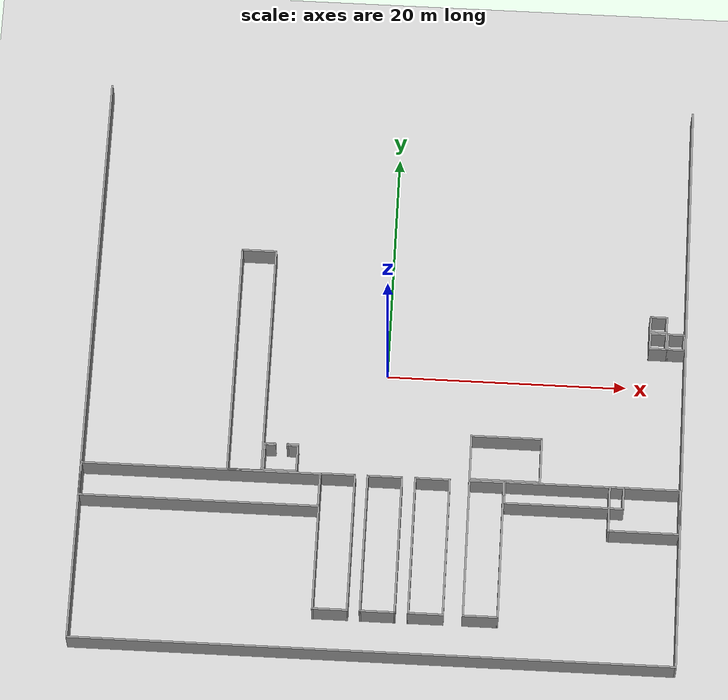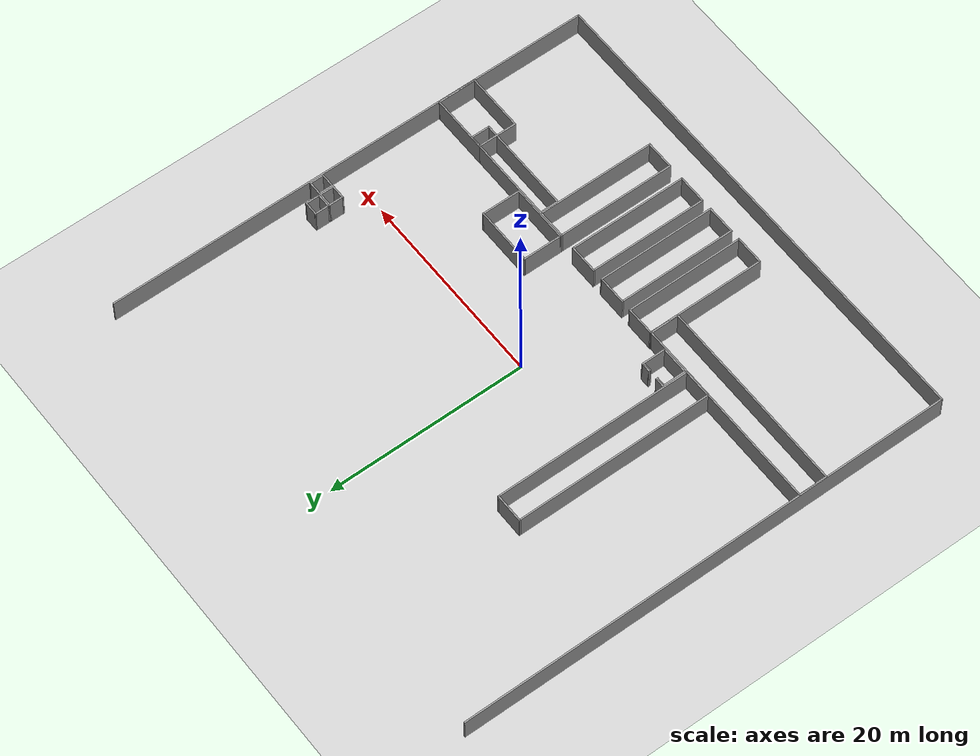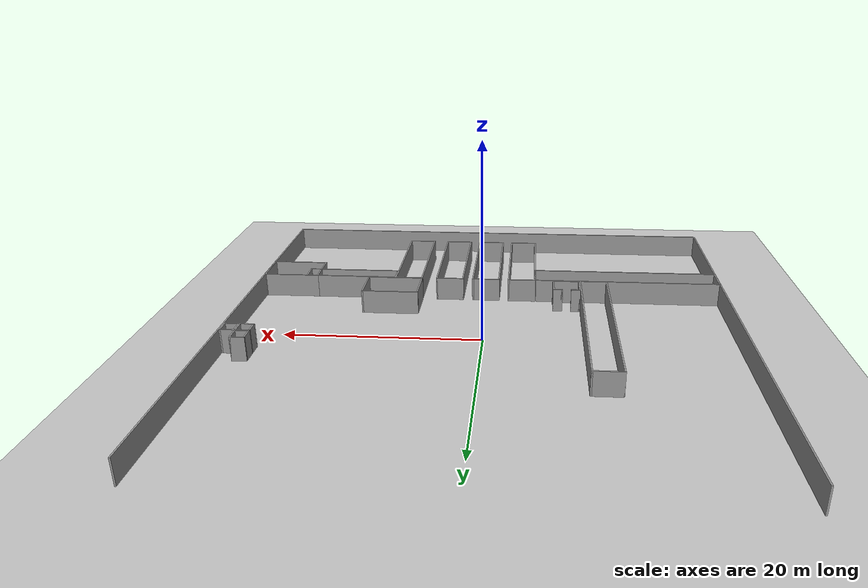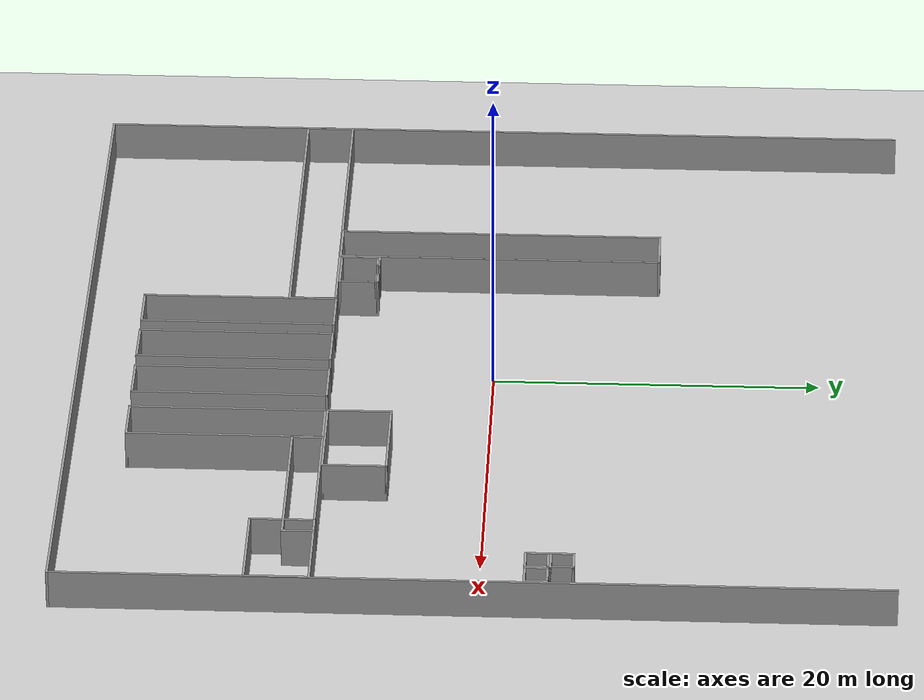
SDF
<sdf version="1.6">
 <world name="default">
  <model name="ground_plane">
   <static>1</static>
   <link name="link">
    <collision name="collision">
     <geometry><plane><normal>0 0 1</normal><size>100 100</size></plane></geometry>
     <surface>
      <contact><collide_bitmask>65535</collide_bitmask></contact>
      <friction><ode><mu>100</mu><mu2>50</mu2></ode></friction>
     </surface>
    </collision>
    <visual name="visual">
     <cast_shadows>0</cast_shadows>
     <geometry><plane><normal>0 0 1</normal><size>100 100</size></plane></geometry>
     <material>
      <script><uri>file://media/materials/scripts/gazebo.material</uri><name>Gazebo/Grey</name></script>
     </material>
    </visual>
   </link>
  </model>
  <model name="wall_50m_v">
   <pose>-25.0143 -0.23534 0 0 -0 0</pose>
   <link name="Wall_2">
    <collision name="Wall_2_Collision">
     <geometry><box><size>50 0.15 2.5</size></box></geometry>
     <pose>0 0 1.25 0 -0 0</pose>
    </collision>
    <visual name="Wall_2_Visual">
     <pose>0 0 1.25 0 -0 0</pose>
     <geometry><box><size>50 0.15 2.5</size></box></geometry>
     <material>
      <script><uri>file://media/materials/scripts/gazebo.material</uri><name>Gazebo/Grey</name></script>
      <ambient>1 1 1 1</ambient>
     </material>
     <meta><layer>0</layer></meta>
    </visual>
    <pose>-0 -1e-06 0 0 -0 -1.5708</pose>
   </link>
   <static>1</static>
  </model>
  <model name="wall_50m_0">
   <pose>-0.071935 -25.2621 0 0 -0 0</pose>
   <link name="Wall_0">
    <collision name="Wall_0_Collision">
     <geometry><box><size>50 0.15 2.5</size></box></geometry>
     <pose>0 0 1.25 0 -0 0</pose>
    </collision>
    <visual name="Wall_0_Visual">
     <pose>0 0 1.25 0 -0 0</pose>
     <geometry><box><size>50 0.15 2.5</size></box></geometry>
     <material>
      <script><uri>file://media/materials/scripts/gazebo.material</uri><name>Gazebo/Grey</name></script>
      <ambient>1 1 1 1</ambient>
     </material>
     <meta><layer>0</layer></meta>
    </visual>
    <pose>-1e-06 0 0 0 -0 0</pose>
   </link>
   <static>1</static>
  </model>
  <model name="wall_50m_v_0">
   <pose>24.8495 -0.34033 0 0 -0 0</pose>
   <link name="Wall_2">
    <collision name="Wall_2_Collision">
     <geometry><box><size>50 0.15 2.5</size></box></geometry>
     <pose>0 0 1.25 0 -0 0</pose>
    </collision>
    <visual name="Wall_2_Visual">
     <pose>0 0 1.25 0 -0 0</pose>
     <geometry><box><size>50 0.15 2.5</size></box></geometry>
     <material>
      <script><uri>file://media/materials/scripts/gazebo.material</uri><name>Gazebo/Grey</name></script>
      <ambient>1 1 1 1</ambient>
     </material>
     <meta><layer>0</layer></meta>
    </visual>
    <pose>-0 -1e-06 0 0 -0 -1.5708</pose>
   </link>
   <static>1</static>
  </model>
  <model name="base20x3">
   <pose>-11.4278 0.026202 0 0 -0 0</pose>
   <link name="Wall_21">
    <collision name="Wall_21_Collision">
     <geometry><box><size>20 0.15 2.5</size></box></geometry>
     <pose>0 0 1.25 0 -0 0</pose>
    </collision>
    <visual name="Wall_21_Visual">
     <pose>0 0 1.25 0 -0 0</pose>
     <geometry><box><size>20 0.15 2.5</size></box></geometry>
     <material>
      <script><uri>file://media/materials/scripts/gazebo.material</uri><name>Gazebo/Grey</name></script>
      <ambient>1 1 1 1</ambient>
     </material>
     <meta><layer>0</layer></meta>
    </visual>
    <pose>-1.425 -0 0 0 -0 -1.5708</pose>
   </link>
   <link name="Wall_22">
    <collision name="Wall_22_Collision">
     <geometry><box><size>3 0.15 2.5</size></box></geometry>
     <pose>0 0 1.25 0 -0 0</pose>
    </collision>
    <visual name="Wall_22_Visual">
     <pose>0 0 1.25 0 -0 0</pose>
     <geometry><box><size>3 0.15 2.5</size></box></geometry>
     <material>
      <script><uri>file://media/materials/scripts/gazebo.material</uri><name>Gazebo/Grey</name></script>
      <ambient>1 1 1 1</ambient>
     </material>
     <meta><layer>0</layer></meta>
    </visual>
    <pose>-0 -9.925 0 0 -0 0</pose>
   </link>
   <link name="Wall_23">
    <collision name="Wall_23_Collision">
     <geometry><box><size>20 0.15 2.5</size></box></geometry>
     <pose>0 0 1.25 0 -0 0</pose>
    </collision>
    <visual name="Wall_23_Visual">
     <pose>0 0 1.25 0 -0 0</pose>
     <geometry><box><size>20 0.15 2.5</size></box></geometry>
     <material>
      <script><uri>file://media/materials/scripts/gazebo.material</uri><name>Gazebo/Grey</name></script>
      <ambient>1 1 1 1</ambient>
     </material>
     <meta><layer>0</layer></meta>
    </visual>
    <pose>1.425 -0 0 0 -0 1.5708</pose>
   </link>
   <link name="Wall_24">
    <collision name="Wall_24_Collision">
     <geometry><box><size>3 0.15 2.5</size></box></geometry>
     <pose>0 0 1.25 0 -0 0</pose>
    </collision>
    <visual name="Wall_24_Visual">
     <pose>0 0 1.25 0 -0 0</pose>
     <geometry><box><size>3 0.15 2.5</size></box></geometry>
     <material>
      <script><uri>file://media/materials/scripts/gazebo.material</uri><name>Gazebo/Grey</name></script>
      <ambient>1 1 1 1</ambient>
     </material>
     <meta><layer>0</layer></meta>
    </visual>
    <pose>-0 9.925 0 0 -0 3.14159</pose>
   </link>
   <static>1</static>
  </model>
  <model name="base3x20">
   <pose>-15.0546 -11.3706 0 0 -0 0</pose>
   <link name="Wall_16">
    <collision name="Wall_16_Collision">
     <geometry><box><size>3 0.15 2.5</size></box></geometry>
     <pose>0 0 1.25 0 -0 0</pose>
    </collision>
    <visual name="Wall_16_Visual">
     <pose>0 0 1.25 0 -0 0</pose>
     <geometry><box><size>3 0.15 2.5</size></box></geometry>
     <material>
      <script><uri>file://media/materials/scripts/gazebo.material</uri><name>Gazebo/Grey</name></script>
      <ambient>1 1 1 1</ambient>
     </material>
     <meta><layer>0</layer></meta>
    </visual>
    <pose>-9.925 -0 0 0 -0 -1.5708</pose>
   </link>
   <link name="Wall_17">
    <collision name="Wall_17_Collision">
     <geometry><box><size>20 0.15 2.5</size></box></geometry>
     <pose>0 0 1.25 0 -0 0</pose>
    </collision>
    <visual name="Wall_17_Visual">
     <pose>0 0 1.25 0 -0 0</pose>
     <geometry><box><size>20 0.15 2.5</size></box></geometry>
     <material>
      <script><uri>file://media/materials/scripts/gazebo.material</uri><name>Gazebo/Grey</name></script>
      <ambient>1 1 1 1</ambient>
     </material>
     <meta><layer>0</layer></meta>
    </visual>
    <pose>-0 -1.425 0 0 -0 0</pose>
   </link>
   <link name="Wall_18">
    <collision name="Wall_18_Collision">
     <geometry><box><size>3 0.15 2.5</size></box></geometry>
     <pose>0 0 1.25 0 -0 0</pose>
    </collision>
    <visual name="Wall_18_Visual">
     <pose>0 0 1.25 0 -0 0</pose>
     <geometry><box><size>3 0.15 2.5</size></box></geometry>
     <material>
      <script><uri>file://media/materials/scripts/gazebo.material</uri><name>Gazebo/Grey</name></script>
      <ambient>1 1 1 1</ambient>
     </material>
     <meta><layer>0</layer></meta>
    </visual>
    <pose>9.925 -0 0 0 -0 1.5708</pose>
   </link>
   <link name="Wall_19">
    <collision name="Wall_19_Collision">
     <geometry><box><size>20 0.15 2.5</size></box></geometry>
     <pose>0 0 1.25 0 -0 0</pose>
    </collision>
    <visual name="Wall_19_Visual">
     <pose>0 0 1.25 0 -0 0</pose>
     <geometry><box><size>20 0.15 2.5</size></box></geometry>
     <material>
      <script><uri>file://media/materials/scripts/gazebo.material</uri><name>Gazebo/Grey</name></script>
      <ambient>1 1 1 1</ambient>
     </material>
     <meta><layer>0</layer></meta>
    </visual>
    <pose>-0 1.425 0 0 -0 3.14159</pose>
   </link>
   <static>1</static>
  </model>
  <model name="base12x3">
   <pose>-3.65533 -15.8322 0 0 -0 0</pose>
   <link name="Wall_6">
    <collision name="Wall_6_Collision">
     <geometry><box><size>12 0.15 2.5</size></box></geometry>
     <pose>0 0 1.25 0 -0 0</pose>
    </collision>
    <visual name="Wall_6_Visual">
     <pose>0 0 1.25 0 -0 0</pose>
     <geometry><box><size>12 0.15 2.5</size></box></geometry>
     <material>
      <script><uri>file://media/materials/scripts/gazebo.material</uri><name>Gazebo/Grey</name></script>
      <ambient>1 1 1 1</ambient>
     </material>
     <meta><layer>0</layer></meta>
    </visual>
    <pose>-1.425 0 0 0 -0 -1.5708</pose>
   </link>
   <link name="Wall_7">
    <collision name="Wall_7_Collision">
     <geometry><box><size>3 0.15 2.5</size></box></geometry>
     <pose>0 0 1.25 0 -0 0</pose>
    </collision>
    <visual name="Wall_7_Visual">
     <pose>0 0 1.25 0 -0 0</pose>
     <geometry><box><size>3 0.15 2.5</size></box></geometry>
     <material>
      <script><uri>file://media/materials/scripts/gazebo.material</uri><name>Gazebo/Grey</name></script>
      <ambient>1 1 1 1</ambient>
     </material>
     <meta><layer>0</layer></meta>
    </visual>
    <pose>0 -5.925 0 0 -0 0</pose>
   </link>
   <link name="Wall_8">
    <collision name="Wall_8_Collision">
     <geometry><box><size>12 0.15 2.5</size></box></geometry>
     <pose>0 0 1.25 0 -0 0</pose>
    </collision>
    <visual name="Wall_8_Visual">
     <pose>0 0 1.25 0 -0 0</pose>
     <geometry><box><size>12 0.15 2.5</size></box></geometry>
     <material>
      <script><uri>file://media/materials/scripts/gazebo.material</uri><name>Gazebo/Grey</name></script>
      <ambient>1 1 1 1</ambient>
     </material>
     <meta><layer>0</layer></meta>
    </visual>
    <pose>1.425 0 0 0 -0 1.5708</pose>
   </link>
   <link name="Wall_9">
    <collision name="Wall_9_Collision">
     <geometry><box><size>3 0.15 2.5</size></box></geometry>
     <pose>0 0 1.25 0 -0 0</pose>
    </collision>
    <visual name="Wall_9_Visual">
     <pose>0 0 1.25 0 -0 0</pose>
     <geometry><box><size>3 0.15 2.5</size></box></geometry>
     <material>
      <script><uri>file://media/materials/scripts/gazebo.material</uri><name>Gazebo/Grey</name></script>
      <ambient>1 1 1 1</ambient>
     </material>
     <meta><layer>0</layer></meta>
    </visual>
    <pose>0 5.925 0 0 -0 3.14159</pose>
   </link>
   <static>1</static>
  </model>
  <model name="base12x3_0">
   <pose>0.25568 -15.8332 0 0 -0 0</pose>
   <link name="Wall_6">
    <collision name="Wall_6_Collision">
     <geometry><box><size>12 0.15 2.5</size></box></geometry>
     <pose>0 0 1.25 0 -0 0</pose>
    </collision>
    <visual name="Wall_6_Visual">
     <pose>0 0 1.25 0 -0 0</pose>
     <geometry><box><size>12 0.15 2.5</size></box></geometry>
     <material>
      <script><uri>file://media/materials/scripts/gazebo.material</uri><name>Gazebo/Grey</name></script>
      <ambient>1 1 1 1</ambient>
     </material>
     <meta><layer>0</layer></meta>
    </visual>
    <pose>-1.425 0 0 0 -0 -1.5708</pose>
   </link>
   <link name="Wall_7">
    <collision name="Wall_7_Collision">
     <geometry><box><size>3 0.15 2.5</size></box></geometry>
     <pose>0 0 1.25 0 -0 0</pose>
    </collision>
    <visual name="Wall_7_Visual">
     <pose>0 0 1.25 0 -0 0</pose>
     <geometry><box><size>3 0.15 2.5</size></box></geometry>
     <material>
      <script><uri>file://media/materials/scripts/gazebo.material</uri><name>Gazebo/Grey</name></script>
      <ambient>1 1 1 1</ambient>
     </material>
     <meta><layer>0</layer></meta>
    </visual>
    <pose>0 -5.925 0 0 -0 0</pose>
   </link>
   <link name="Wall_8">
    <collision name="Wall_8_Collision">
     <geometry><box><size>12 0.15 2.5</size></box></geometry>
     <pose>0 0 1.25 0 -0 0</pose>
    </collision>
    <visual name="Wall_8_Visual">
     <pose>0 0 1.25 0 -0 0</pose>
     <geometry><box><size>12 0.15 2.5</size></box></geometry>
     <material>
      <script><uri>file://media/materials/scripts/gazebo.material</uri><name>Gazebo/Grey</name></script>
      <ambient>1 1 1 1</ambient>
     </material>
     <meta><layer>0</layer></meta>
    </visual>
    <pose>1.425 0 0 0 -0 1.5708</pose>
   </link>
   <link name="Wall_9">
    <collision name="Wall_9_Collision">
     <geometry><box><size>3 0.15 2.5</size></box></geometry>
     <pose>0 0 1.25 0 -0 0</pose>
    </collision>
    <visual name="Wall_9_Visual">
     <pose>0 0 1.25 0 -0 0</pose>
     <geometry><box><size>3 0.15 2.5</size></box></geometry>
     <material>
      <script><uri>file://media/materials/scripts/gazebo.material</uri><name>Gazebo/Grey</name></script>
      <ambient>1 1 1 1</ambient>
     </material>
     <meta><layer>0</layer></meta>
    </visual>
    <pose>0 5.925 0 0 -0 3.14159</pose>
   </link>
   <static>1</static>
  </model>
  <model name="base12x3_1">
   <pose>4.21694 -15.8234 0 0 -0 0</pose>
   <link name="Wall_6">
    <collision name="Wall_6_Collision">
     <geometry><box><size>12 0.15 2.5</size></box></geometry>
     <pose>0 0 1.25 0 -0 0</pose>
    </collision>
    <visual name="Wall_6_Visual">
     <pose>0 0 1.25 0 -0 0</pose>
     <geometry><box><size>12 0.15 2.5</size></box></geometry>
     <material>
      <script><uri>file://media/materials/scripts/gazebo.material</uri><name>Gazebo/Grey</name></script>
      <ambient>1 1 1 1</ambient>
     </material>
     <meta><layer>0</layer></meta>
    </visual>
    <pose>-1.425 0 0 0 -0 -1.5708</pose>
   </link>
   <link name="Wall_7">
    <collision name="Wall_7_Collision">
     <geometry><box><size>3 0.15 2.5</size></box></geometry>
     <pose>0 0 1.25 0 -0 0</pose>
    </collision>
    <visual name="Wall_7_Visual">
     <pose>0 0 1.25 0 -0 0</pose>
     <geometry><box><size>3 0.15 2.5</size></box></geometry>
     <material>
      <script><uri>file://media/materials/scripts/gazebo.material</uri><name>Gazebo/Grey</name></script>
      <ambient>1 1 1 1</ambient>
     </material>
     <meta><layer>0</layer></meta>
    </visual>
    <pose>0 -5.925 0 0 -0 0</pose>
   </link>
   <link name="Wall_8">
    <collision name="Wall_8_Collision">
     <geometry><box><size>12 0.15 2.5</size></box></geometry>
     <pose>0 0 1.25 0 -0 0</pose>
    </collision>
    <visual name="Wall_8_Visual">
     <pose>0 0 1.25 0 -0 0</pose>
     <geometry><box><size>12 0.15 2.5</size></box></geometry>
     <material>
      <script><uri>file://media/materials/scripts/gazebo.material</uri><name>Gazebo/Grey</name></script>
      <ambient>1 1 1 1</ambient>
     </material>
     <meta><layer>0</layer></meta>
    </visual>
    <pose>1.425 0 0 0 -0 1.5708</pose>
   </link>
   <link name="Wall_9">
    <collision name="Wall_9_Collision">
     <geometry><box><size>3 0.15 2.5</size></box></geometry>
     <pose>0 0 1.25 0 -0 0</pose>
    </collision>
    <visual name="Wall_9_Visual">
     <pose>0 0 1.25 0 -0 0</pose>
     <geometry><box><size>3 0.15 2.5</size></box></geometry>
     <material>
      <script><uri>file://media/materials/scripts/gazebo.material</uri><name>Gazebo/Grey</name></script>
      <ambient>1 1 1 1</ambient>
     </material>
     <meta><layer>0</layer></meta>
    </visual>
    <pose>0 5.925 0 0 -0 3.14159</pose>
   </link>
   <static>1</static>
  </model>
  <model name="base12x3_2">
   <pose>8.71498 -15.8148 0 0 -0 0</pose>
   <link name="Wall_6">
    <collision name="Wall_6_Collision">
     <geometry><box><size>12 0.15 2.5</size></box></geometry>
     <pose>0 0 1.25 0 -0 0</pose>
    </collision>
    <visual name="Wall_6_Visual">
     <pose>0 0 1.25 0 -0 0</pose>
     <geometry><box><size>12 0.15 2.5</size></box></geometry>
     <material>
      <script><uri>file://media/materials/scripts/gazebo.material</uri><name>Gazebo/Grey</name></script>
      <ambient>1 1 1 1</ambient>
     </material>
     <meta><layer>0</layer></meta>
    </visual>
    <pose>-1.425 0 0 0 -0 -1.5708</pose>
   </link>
   <link name="Wall_7">
    <collision name="Wall_7_Collision">
     <geometry><box><size>3 0.15 2.5</size></box></geometry>
     <pose>0 0 1.25 0 -0 0</pose>
    </collision>
    <visual name="Wall_7_Visual">
     <pose>0 0 1.25 0 -0 0</pose>
     <geometry><box><size>3 0.15 2.5</size></box></geometry>
     <material>
      <script><uri>file://media/materials/scripts/gazebo.material</uri><name>Gazebo/Grey</name></script>
      <ambient>1 1 1 1</ambient>
     </material>
     <meta><layer>0</layer></meta>
    </visual>
    <pose>0 -5.925 0 0 -0 0</pose>
   </link>
   <link name="Wall_8">
    <collision name="Wall_8_Collision">
     <geometry><box><size>12 0.15 2.5</size></box></geometry>
     <pose>0 0 1.25 0 -0 0</pose>
    </collision>
    <visual name="Wall_8_Visual">
     <pose>0 0 1.25 0 -0 0</pose>
     <geometry><box><size>12 0.15 2.5</size></box></geometry>
     <material>
      <script><uri>file://media/materials/scripts/gazebo.material</uri><name>Gazebo/Grey</name></script>
      <ambient>1 1 1 1</ambient>
     </material>
     <meta><layer>0</layer></meta>
    </visual>
    <pose>1.425 0 0 0 -0 1.5708</pose>
   </link>
   <link name="Wall_9">
    <collision name="Wall_9_Collision">
     <geometry><box><size>3 0.15 2.5</size></box></geometry>
     <pose>0 0 1.25 0 -0 0</pose>
    </collision>
    <visual name="Wall_9_Visual">
     <pose>0 0 1.25 0 -0 0</pose>
     <geometry><box><size>3 0.15 2.5</size></box></geometry>
     <material>
      <script><uri>file://media/materials/scripts/gazebo.material</uri><name>Gazebo/Grey</name></script>
      <ambient>1 1 1 1</ambient>
     </material>
     <meta><layer>0</layer></meta>
    </visual>
    <pose>0 5.925 0 0 -0 3.14159</pose>
   </link>
   <static>1</static>
  </model>
  <model name="base2x10">
   <pose>15.1626 -10.8018 0 0 -0 0</pose>
   <link name="Wall_10">
    <collision name="Wall_10_Collision">
     <geometry><box><size>2 0.15 2.5</size></box></geometry>
     <pose>0 0 1.25 0 -0 0</pose>
    </collision>
    <visual name="Wall_10_Visual">
     <pose>0 0 1.25 0 -0 0</pose>
     <geometry><box><size>2 0.15 2.5</size></box></geometry>
     <material>
      <script><uri>file://media/materials/scripts/gazebo.material</uri><name>Gazebo/Grey</name></script>
      <ambient>1 1 1 1</ambient>
     </material>
     <meta><layer>0</layer></meta>
    </visual>
    <pose>-4.925 0 0 0 -0 -1.5708</pose>
   </link>
   <link name="Wall_11">
    <collision name="Wall_11_Collision">
     <geometry><box><size>10 0.15 2.5</size></box></geometry>
     <pose>0 0 1.25 0 -0 0</pose>
    </collision>
    <visual name="Wall_11_Visual">
     <pose>0 0 1.25 0 -0 0</pose>
     <geometry><box><size>10 0.15 2.5</size></box></geometry>
     <material>
      <script><uri>file://media/materials/scripts/gazebo.material</uri><name>Gazebo/Grey</name></script>
      <ambient>1 1 1 1</ambient>
     </material>
     <meta><layer>0</layer></meta>
    </visual>
    <pose>0 -0.925 0 0 -0 0</pose>
   </link>
   <link name="Wall_12">
    <collision name="Wall_12_Collision">
     <geometry><box><size>2 0.15 2.5</size></box></geometry>
     <pose>0 0 1.25 0 -0 0</pose>
    </collision>
    <visual name="Wall_12_Visual">
     <pose>0 0 1.25 0 -0 0</pose>
     <geometry><box><size>2 0.15 2.5</size></box></geometry>
     <material>
      <script><uri>file://media/materials/scripts/gazebo.material</uri><name>Gazebo/Grey</name></script>
      <ambient>1 1 1 1</ambient>
     </material>
     <meta><layer>0</layer></meta>
    </visual>
    <pose>4.925 0 0 0 -0 1.5708</pose>
   </link>
   <link name="Wall_13">
    <collision name="Wall_13_Collision">
     <geometry><box><size>10 0.15 2.5</size></box></geometry>
     <pose>0 0 1.25 0 -0 0</pose>
    </collision>
    <visual name="Wall_13_Visual">
     <pose>0 0 1.25 0 -0 0</pose>
     <geometry><box><size>10 0.15 2.5</size></box></geometry>
     <material>
      <script><uri>file://media/materials/scripts/gazebo.material</uri><name>Gazebo/Grey</name></script>
      <ambient>1 1 1 1</ambient>
     </material>
     <meta><layer>0</layer></meta>
    </visual>
    <pose>0 0.925 0 0 -0 3.14159</pose>
   </link>
   <static>1</static>
  </model>
  <model name="base4x6">
   <pose>21.8624 -11.7949 0 0 -0 0</pose>
   <link name="Wall_23">
    <collision name="Wall_23_Collision">
     <geometry><box><size>4 0.15 2.5</size></box></geometry>
     <pose>0 0 1.25 0 -0 0</pose>
    </collision>
    <visual name="Wall_23_Visual">
     <pose>0 0 1.25 0 -0 0</pose>
     <geometry><box><size>4 0.15 2.5</size></box></geometry>
     <material>
      <script><uri>file://media/materials/scripts/gazebo.material</uri><name>Gazebo/Grey</name></script>
      <ambient>1 1 1 1</ambient>
     </material>
     <meta><layer>0</layer></meta>
    </visual>
    <pose>-2.925 0 0 0 -0 -1.5708</pose>
   </link>
   <link name="Wall_24">
    <collision name="Wall_24_Collision">
     <geometry><box><size>6 0.15 2.5</size></box></geometry>
     <pose>0 0 1.25 0 -0 0</pose>
    </collision>
    <visual name="Wall_24_Visual">
     <pose>0 0 1.25 0 -0 0</pose>
     <geometry><box><size>6 0.15 2.5</size></box></geometry>
     <material>
      <script><uri>file://media/materials/scripts/gazebo.material</uri><name>Gazebo/Grey</name></script>
      <ambient>1 1 1 1</ambient>
     </material>
     <meta><layer>0</layer></meta>
    </visual>
    <pose>-0 -1.925 0 0 -0 0</pose>
   </link>
   <link name="Wall_25">
    <collision name="Wall_25_Collision">
     <geometry><box><size>4 0.15 2.5</size></box></geometry>
     <pose>0 0 1.25 0 -0 0</pose>
    </collision>
    <visual name="Wall_25_Visual">
     <pose>0 0 1.25 0 -0 0</pose>
     <geometry><box><size>4 0.15 2.5</size></box></geometry>
     <material>
      <script><uri>file://media/materials/scripts/gazebo.material</uri><name>Gazebo/Grey</name></script>
      <ambient>1 1 1 1</ambient>
     </material>
     <meta><layer>0</layer></meta>
    </visual>
    <pose>2.925 0 0 0 -0 1.5708</pose>
   </link>
   <link name="Wall_26">
    <collision name="Wall_26_Collision">
     <geometry><box><size>6 0.15 2.5</size></box></geometry>
     <pose>0 0 1.25 0 -0 0</pose>
    </collision>
    <visual name="Wall_26_Visual">
     <pose>0 0 1.25 0 -0 0</pose>
     <geometry><box><size>6 0.15 2.5</size></box></geometry>
     <material>
      <script><uri>file://media/materials/scripts/gazebo.material</uri><name>Gazebo/Grey</name></script>
      <ambient>1 1 1 1</ambient>
     </material>
     <meta><layer>0</layer></meta>
    </visual>
    <pose>-0 1.925 0 0 -0 3.14159</pose>
   </link>
   <static>1</static>
  </model>
  <model name="base4x6_5">
   <pose>10.2051 -7.82544 0 0 -0 0</pose>
   <link name="Wall_23">
    <collision name="Wall_23_Collision">
     <geometry><box><size>4 0.15 2.5</size></box></geometry>
     <pose>0 0 1.25 0 -0 0</pose>
    </collision>
    <visual name="Wall_23_Visual">
     <pose>0 0 1.25 0 -0 0</pose>
     <geometry><box><size>4 0.15 2.5</size></box></geometry>
     <material>
      <script><uri>file://media/materials/scripts/gazebo.material</uri><name>Gazebo/Grey</name></script>
      <ambient>1 1 1 1</ambient>
     </material>
     <meta><layer>0</layer></meta>
    </visual>
    <pose>-2.925 0 0 0 -0 -1.5708</pose>
   </link>
   <link name="Wall_24">
    <collision name="Wall_24_Collision">
     <geometry><box><size>6 0.15 2.5</size></box></geometry>
     <pose>0 0 1.25 0 -0 0</pose>
    </collision>
    <visual name="Wall_24_Visual">
     <pose>0 0 1.25 0 -0 0</pose>
     <geometry><box><size>6 0.15 2.5</size></box></geometry>
     <material>
      <script><uri>file://media/materials/scripts/gazebo.material</uri><name>Gazebo/Grey</name></script>
      <ambient>1 1 1 1</ambient>
     </material>
     <meta><layer>0</layer></meta>
    </visual>
    <pose>-0 -1.925 0 0 -0 0</pose>
   </link>
   <link name="Wall_25">
    <collision name="Wall_25_Collision">
     <geometry><box><size>4 0.15 2.5</size></box></geometry>
     <pose>0 0 1.25 0 -0 0</pose>
    </collision>
    <visual name="Wall_25_Visual">
     <pose>0 0 1.25 0 -0 0</pose>
     <geometry><box><size>4 0.15 2.5</size></box></geometry>
     <material>
      <script><uri>file://media/materials/scripts/gazebo.material</uri><name>Gazebo/Grey</name></script>
      <ambient>1 1 1 1</ambient>
     </material>
     <meta><layer>0</layer></meta>
    </visual>
    <pose>2.925 0 0 0 -0 1.5708</pose>
   </link>
   <link name="Wall_26">
    <collision name="Wall_26_Collision">
     <geometry><box><size>6 0.15 2.5</size></box></geometry>
     <pose>0 0 1.25 0 -0 0</pose>
    </collision>
    <visual name="Wall_26_Visual">
     <pose>0 0 1.25 0 -0 0</pose>
     <geometry><box><size>6 0.15 2.5</size></box></geometry>
     <material>
      <script><uri>file://media/materials/scripts/gazebo.material</uri><name>Gazebo/Grey</name></script>
      <ambient>1 1 1 1</ambient>
     </material>
     <meta><layer>0</layer></meta>
    </visual>
    <pose>-0 1.925 0 0 -0 3.14159</pose>
   </link>
   <static>1</static>
  </model>
  <model name="elevator_90cm">
   <pose>-8.48705 -8.62797 0 0 -0 0</pose>
   <link name="Wall_22">
    <collision name="Wall_22_Collision">
     <geometry><box><size>1 0.15 2.5</size></box></geometry>
     <pose>0 0 1.25 0 -0 0</pose>
    </collision>
    <visual name="Wall_22_Visual">
     <pose>0 0 1.25 0 -0 0</pose>
     <geometry><box><size>1 0.15 2.5</size></box></geometry>
     <material>
      <script><uri>file://media/materials/scripts/gazebo.material</uri><name>Gazebo/Grey</name></script>
      <ambient>1 1 1 1</ambient>
     </material>
     <meta><layer>0</layer></meta>
    </visual>
    <pose>-0.95 1.175 0 0 -0 3.14159</pose>
   </link>
   <link name="Wall_23">
    <collision name="Wall_23_Collision">
     <geometry><box><size>2.5 0.15 2.5</size></box></geometry>
     <pose>0 0 1.25 0 -0 0</pose>
    </collision>
    <visual name="Wall_23_Visual">
     <pose>0 0 1.25 0 -0 0</pose>
     <geometry><box><size>2.5 0.15 2.5</size></box></geometry>
     <material>
      <script><uri>file://media/materials/scripts/gazebo.material</uri><name>Gazebo/Grey</name></script>
      <ambient>1 1 1 1</ambient>
     </material>
     <meta><layer>0</layer></meta>
    </visual>
    <pose>-1.375 0 0 0 -0 -1.5708</pose>
   </link>
   <link name="Wall_25">
    <collision name="Wall_25_Collision">
     <geometry><box><size>1 0.15 2.5</size></box></geometry>
     <pose>0 0 1.25 0 -0 0</pose>
    </collision>
    <visual name="Wall_25_Visual">
     <pose>0 0 1.25 0 -0 0</pose>
     <geometry><box><size>1 0.15 2.5</size></box></geometry>
     <material>
      <script><uri>file://media/materials/scripts/gazebo.material</uri><name>Gazebo/Grey</name></script>
      <ambient>1 1 1 1</ambient>
     </material>
     <meta><layer>0</layer></meta>
    </visual>
    <pose>0.95 1.175 0 0 -0 0</pose>
   </link>
   <link name="Wall_26">
    <collision name="Wall_26_Collision">
     <geometry><box><size>2.5 0.15 2.5</size></box></geometry>
     <pose>0 0 1.25 0 -0 0</pose>
    </collision>
    <visual name="Wall_26_Visual">
     <pose>0 0 1.25 0 -0 0</pose>
     <geometry><box><size>2.5 0.15 2.5</size></box></geometry>
     <material>
      <script><uri>file://media/materials/scripts/gazebo.material</uri><name>Gazebo/Grey</name></script>
      <ambient>1 1 1 1</ambient>
     </material>
     <meta><layer>0</layer></meta>
    </visual>
    <pose>1.375 0 0 0 -0 -1.5708</pose>
   </link>
   <link name="Wall_27">
    <collision name="Wall_27_Collision">
     <geometry><box><size>2.9 0.15 2.5</size></box></geometry>
     <pose>0 0 1.25 0 -0 0</pose>
    </collision>
    <visual name="Wall_27_Visual">
     <pose>0 0 1.25 0 -0 0</pose>
     <geometry><box><size>2.9 0.15 2.5</size></box></geometry>
     <material>
      <script><uri>file://media/materials/scripts/gazebo.material</uri><name>Gazebo/Grey</name></script>
      <ambient>1 1 1 1</ambient>
     </material>
     <meta><layer>0</layer></meta>
    </visual>
    <pose>0 -1.175 0 0 -0 3.14159</pose>
   </link>
   <link name="Wall_29">
    <collision name="Wall_29_Collision">
     <geometry><box><size>0.25 0.15 2.5</size></box></geometry>
     <pose>0 0 1.25 0 -0 0</pose>
    </collision>
    <visual name="Wall_29_Visual">
     <pose>0 0 1.25 0 -0 0</pose>
     <geometry><box><size>0.25 0.15 2.5</size></box></geometry>
     <material>
      <script><uri>file://media/materials/scripts/gazebo.material</uri><name>Gazebo/Grey</name></script>
      <ambient>1 1 1 1</ambient>
     </material>
     <meta><layer>0</layer></meta>
    </visual>
    <pose>-0.525 1.125 0 0 -0 -1.5708</pose>
   </link>
   <link name="Wall_31">
    <collision name="Wall_31_Collision">
     <geometry><box><size>0.25 0.15 2.5</size></box></geometry>
     <pose>0 0 1.25 0 -0 0</pose>
    </collision>
    <visual name="Wall_31_Visual">
     <pose>0 0 1.25 0 -0 0</pose>
     <geometry><box><size>0.25 0.15 2.5</size></box></geometry>
     <material>
      <script><uri>file://media/materials/scripts/gazebo.material</uri><name>Gazebo/Grey</name></script>
      <ambient>1 1 1 1</ambient>
     </material>
     <meta><layer>0</layer></meta>
    </visual>
    <pose>-1.375 1.125 0 0 -0 -1.5708</pose>
   </link>
   <link name="Wall_32">
    <collision name="Wall_32_Collision">
     <geometry><box><size>1 0.15 2.5</size></box></geometry>
     <pose>0 0 1.25 0 -0 0</pose>
    </collision>
    <visual name="Wall_32_Visual">
     <pose>0 0 1.25 0 -0 0</pose>
     <geometry><box><size>1 0.15 2.5</size></box></geometry>
     <material>
      <script><uri>file://media/materials/scripts/gazebo.material</uri><name>Gazebo/Grey</name></script>
      <ambient>1 1 1 1</ambient>
     </material>
     <meta><layer>0</layer></meta>
    </visual>
    <pose>-0.95 1.075 0 0 -0 0</pose>
   </link>
   <link name="Wall_34">
    <collision name="Wall_34_Collision">
     <geometry><box><size>0.25 0.15 2.5</size></box></geometry>
     <pose>0 0 1.25 0 -0 0</pose>
    </collision>
    <visual name="Wall_34_Visual">
     <pose>0 0 1.25 0 -0 0</pose>
     <geometry><box><size>0.25 0.15 2.5</size></box></geometry>
     <material>
      <script><uri>file://media/materials/scripts/gazebo.material</uri><name>Gazebo/Grey</name></script>
      <ambient>1 1 1 1</ambient>
     </material>
     <meta><layer>0</layer></meta>
    </visual>
    <pose>0.525 1.125 0 0 -0 -1.5708</pose>
   </link>
   <link name="Wall_36">
    <collision name="Wall_36_Collision">
     <geometry><box><size>0.25 0.15 2.5</size></box></geometry>
     <pose>0 0 1.25 0 -0 0</pose>
    </collision>
    <visual name="Wall_36_Visual">
     <pose>0 0 1.25 0 -0 0</pose>
     <geometry><box><size>0.25 0.15 2.5</size></box></geometry>
     <material>
      <script><uri>file://media/materials/scripts/gazebo.material</uri><name>Gazebo/Grey</name></script>
      <ambient>1 1 1 1</ambient>
     </material>
     <meta><layer>0</layer></meta>
    </visual>
    <pose>1.375 1.125 0 0 -0 -1.5708</pose>
   </link>
   <link name="Wall_37">
    <collision name="Wall_37_Collision">
     <geometry><box><size>1 0.15 2.5</size></box></geometry>
     <pose>0 0 1.25 0 -0 0</pose>
    </collision>
    <visual name="Wall_37_Visual">
     <pose>0 0 1.25 0 -0 0</pose>
     <geometry><box><size>1 0.15 2.5</size></box></geometry>
     <material>
      <script><uri>file://media/materials/scripts/gazebo.material</uri><name>Gazebo/Grey</name></script>
      <ambient>1 1 1 1</ambient>
     </material>
     <meta><layer>0</layer></meta>
    </visual>
    <pose>0.95 1.075 0 0 -0 3.14159</pose>
   </link>
   <static>1</static>
  </model>
  <model name="box_1.5mx1.5m_1">
   <pose>22.5362 4.9176 0 0 -0 0</pose>
   <link name="Wall_15">
    <collision name="Wall_15_Collision">
     <geometry><box><size>1.5 0.15 2.5</size></box></geometry>
     <pose>0 0 1.25 0 -0 0</pose>
    </collision>
    <visual name="Wall_15_Visual">
     <pose>0 0 1.25 0 -0 0</pose>
     <geometry><box><size>1.5 0.15 2.5</size></box></geometry>
     <material>
      <script><uri>file://media/materials/scripts/gazebo.material</uri><name>Gazebo/Grey</name></script>
      <ambient>1 1 1 1</ambient>
     </material>
     <meta><layer>0</layer></meta>
    </visual>
    <pose>-0.675 -0 0 0 -0 -1.5708</pose>
   </link>
   <link name="Wall_16">
    <collision name="Wall_16_Collision">
     <geometry><box><size>1.5 0.15 2.5</size></box></geometry>
     <pose>0 0 1.25 0 -0 0</pose>
    </collision>
    <visual name="Wall_16_Visual">
     <pose>0 0 1.25 0 -0 0</pose>
     <geometry><box><size>1.5 0.15 2.5</size></box></geometry>
     <material>
      <script><uri>file://media/materials/scripts/gazebo.material</uri><name>Gazebo/Grey</name></script>
      <ambient>1 1 1 1</ambient>
     </material>
     <meta><layer>0</layer></meta>
    </visual>
    <pose>-0 -0.675 0 0 -0 0</pose>
   </link>
   <link name="Wall_17">
    <collision name="Wall_17_Collision">
     <geometry><box><size>1.5 0.15 2.5</size></box></geometry>
     <pose>0 0 1.25 0 -0 0</pose>
    </collision>
    <visual name="Wall_17_Visual">
     <pose>0 0 1.25 0 -0 0</pose>
     <geometry><box><size>1.5 0.15 2.5</size></box></geometry>
     <material>
      <script><uri>file://media/materials/scripts/gazebo.material</uri><name>Gazebo/Grey</name></script>
      <ambient>1 1 1 1</ambient>
     </material>
     <meta><layer>0</layer></meta>
    </visual>
    <pose>0.675 -0 0 0 -0 1.5708</pose>
   </link>
   <link name="Wall_18">
    <collision name="Wall_18_Collision">
     <geometry><box><size>1.5 0.15 2.5</size></box></geometry>
     <pose>0 0 1.25 0 -0 0</pose>
    </collision>
    <visual name="Wall_18_Visual">
     <pose>0 0 1.25 0 -0 0</pose>
     <geometry><box><size>1.5 0.15 2.5</size></box></geometry>
     <material>
      <script><uri>file://media/materials/scripts/gazebo.material</uri><name>Gazebo/Grey</name></script>
      <ambient>1 1 1 1</ambient>
     </material>
     <meta><layer>0</layer></meta>
    </visual>
    <pose>-0 0.675 0 0 -0 3.14159</pose>
   </link>
   <static>1</static>
  </model>
  <model name="box_1.5mx1.5m_2">
   <pose>22.5369 3.4202 0 0 -0 0</pose>
   <link name="Wall_15">
    <collision name="Wall_15_Collision">
     <geometry><box><size>1.5 0.15 2.5</size></box></geometry>
     <pose>0 0 1.25 0 -0 0</pose>
    </collision>
    <visual name="Wall_15_Visual">
     <pose>0 0 1.25 0 -0 0</pose>
     <geometry><box><size>1.5 0.15 2.5</size></box></geometry>
     <material>
      <script><uri>file://media/materials/scripts/gazebo.material</uri><name>Gazebo/Grey</name></script>
      <ambient>1 1 1 1</ambient>
     </material>
     <meta><layer>0</layer></meta>
    </visual>
    <pose>-0.675 -0 0 0 -0 -1.5708</pose>
   </link>
   <link name="Wall_16">
    <collision name="Wall_16_Collision">
     <geometry><box><size>1.5 0.15 2.5</size></box></geometry>
     <pose>0 0 1.25 0 -0 0</pose>
    </collision>
    <visual name="Wall_16_Visual">
     <pose>0 0 1.25 0 -0 0</pose>
     <geometry><box><size>1.5 0.15 2.5</size></box></geometry>
     <material>
      <script><uri>file://media/materials/scripts/gazebo.material</uri><name>Gazebo/Grey</name></script>
      <ambient>1 1 1 1</ambient>
     </material>
     <meta><layer>0</layer></meta>
    </visual>
    <pose>-0 -0.675 0 0 -0 0</pose>
   </link>
   <link name="Wall_17">
    <collision name="Wall_17_Collision">
     <geometry><box><size>1.5 0.15 2.5</size></box></geometry>
     <pose>0 0 1.25 0 -0 0</pose>
    </collision>
    <visual name="Wall_17_Visual">
     <pose>0 0 1.25 0 -0 0</pose>
     <geometry><box><size>1.5 0.15 2.5</size></box></geometry>
     <material>
      <script><uri>file://media/materials/scripts/gazebo.material</uri><name>Gazebo/Grey</name></script>
      <ambient>1 1 1 1</ambient>
     </material>
     <meta><layer>0</layer></meta>
    </visual>
    <pose>0.675 -0 0 0 -0 1.5708</pose>
   </link>
   <link name="Wall_18">
    <collision name="Wall_18_Collision">
     <geometry><box><size>1.5 0.15 2.5</size></box></geometry>
     <pose>0 0 1.25 0 -0 0</pose>
    </collision>
    <visual name="Wall_18_Visual">
     <pose>0 0 1.25 0 -0 0</pose>
     <geometry><box><size>1.5 0.15 2.5</size></box></geometry>
     <material>
      <script><uri>file://media/materials/scripts/gazebo.material</uri><name>Gazebo/Grey</name></script>
      <ambient>1 1 1 1</ambient>
     </material>
     <meta><layer>0</layer></meta>
    </visual>
    <pose>-0 0.675 0 0 -0 3.14159</pose>
   </link>
   <static>1</static>
  </model>
  <model name="box_1.5mx1.5m_4">
   <pose>24.0316 3.41839 0 0 -0 0</pose>
   <link name="Wall_15">
    <collision name="Wall_15_Collision">
     <geometry><box><size>1.5 0.15 2.5</size></box></geometry>
     <pose>0 0 1.25 0 -0 0</pose>
    </collision>
    <visual name="Wall_15_Visual">
     <pose>0 0 1.25 0 -0 0</pose>
     <geometry><box><size>1.5 0.15 2.5</size></box></geometry>
     <material>
      <script><uri>file://media/materials/scripts/gazebo.material</uri><name>Gazebo/Grey</name></script>
      <ambient>1 1 1 1</ambient>
     </material>
     <meta><layer>0</layer></meta>
    </visual>
    <pose>-0.675 -0 0 0 -0 -1.5708</pose>
   </link>
   <link name="Wall_16">
    <collision name="Wall_16_Collision">
     <geometry><box><size>1.5 0.15 2.5</size></box></geometry>
     <pose>0 0 1.25 0 -0 0</pose>
    </collision>
    <visual name="Wall_16_Visual">
     <pose>0 0 1.25 0 -0 0</pose>
     <geometry><box><size>1.5 0.15 2.5</size></box></geometry>
     <material>
      <script><uri>file://media/materials/scripts/gazebo.material</uri><name>Gazebo/Grey</name></script>
      <ambient>1 1 1 1</ambient>
     </material>
     <meta><layer>0</layer></meta>
    </visual>
    <pose>-0 -0.675 0 0 -0 0</pose>
   </link>
   <link name="Wall_17">
    <collision name="Wall_17_Collision">
     <geometry><box><size>1.5 0.15 2.5</size></box></geometry>
     <pose>0 0 1.25 0 -0 0</pose>
    </collision>
    <visual name="Wall_17_Visual">
     <pose>0 0 1.25 0 -0 0</pose>
     <geometry><box><size>1.5 0.15 2.5</size></box></geometry>
     <material>
      <script><uri>file://media/materials/scripts/gazebo.material</uri><name>Gazebo/Grey</name></script>
      <ambient>1 1 1 1</ambient>
     </material>
     <meta><layer>0</layer></meta>
    </visual>
    <pose>0.675 -0 0 0 -0 1.5708</pose>
   </link>
   <link name="Wall_18">
    <collision name="Wall_18_Collision">
     <geometry><box><size>1.5 0.15 2.5</size></box></geometry>
     <pose>0 0 1.25 0 -0 0</pose>
    </collision>
    <visual name="Wall_18_Visual">
     <pose>0 0 1.25 0 -0 0</pose>
     <geometry><box><size>1.5 0.15 2.5</size></box></geometry>
     <material>
      <script><uri>file://media/materials/scripts/gazebo.material</uri><name>Gazebo/Grey</name></script>
      <ambient>1 1 1 1</ambient>
     </material>
     <meta><layer>0</layer></meta>
    </visual>
    <pose>-0 0.675 0 0 -0 3.14159</pose>
   </link>
   <static>1</static>
  </model>
 </world>
</sdf>
